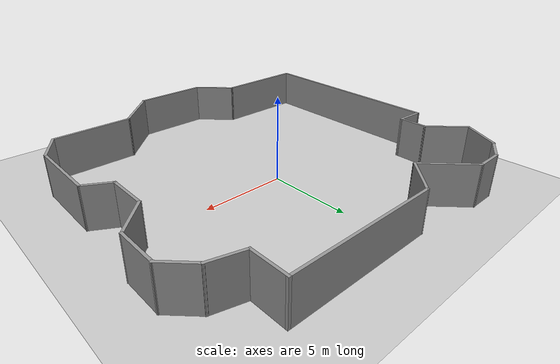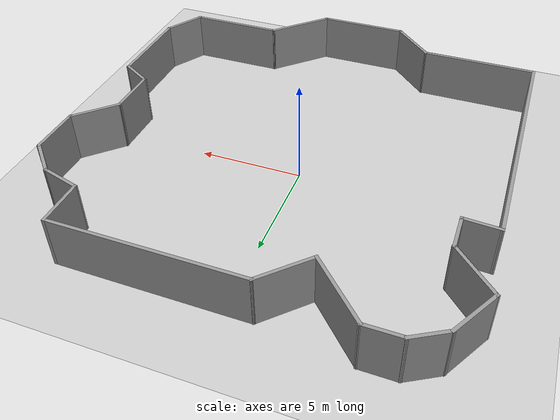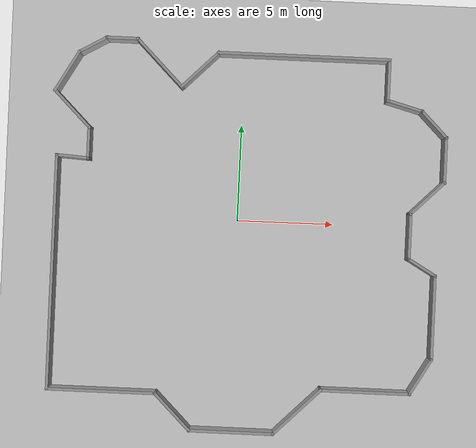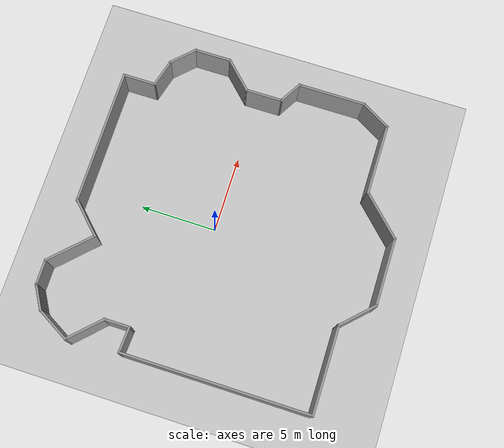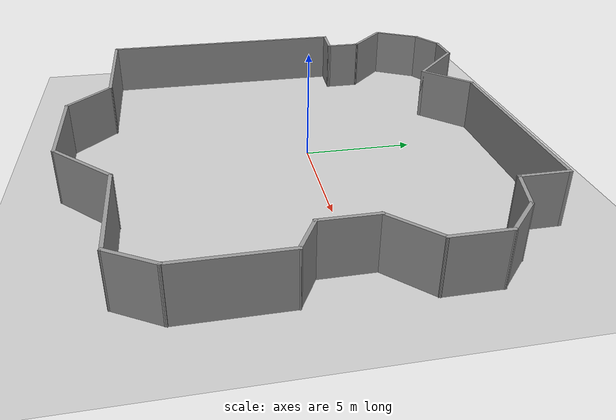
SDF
<sdf version="1.6">
 <world name="default">
  <light name="sun" type="directional">
   <pose>0 0 10 0 -0 0</pose>
   <diffuse>0.8 0.8 0.8 1</diffuse>
   <specular>0.1 0.1 0.1 1</specular>
   <attenuation>
    <range>1000</range>
    <constant>0.9</constant>
    <linear>0.01</linear>
    <quadratic>0.001</quadratic>
   </attenuation>
   <direction>-0.5 0.5 -1</direction>
  </light>
  <model name="ground_plane">
   <static>1</static>
   <link name="link">
    <collision name="collision">
     <geometry><plane><normal>0 0 1</normal><size>100 100</size></plane></geometry>
     <surface><friction><ode><mu>100</mu><mu2>50</mu2></ode></friction></surface>
    </collision>
    <visual name="visual">
     <cast_shadows>0</cast_shadows>
     <geometry><plane><normal>0 0 1</normal><size>100 100</size></plane></geometry>
     <material>
      <script><uri>file://media/materials/scripts/gazebo.material</uri><name>Gazebo/Grey</name></script>
     </material>
    </visual>
   </link>
  </model>
  <gravity>0 0 -9.8</gravity>
  <magnetic_field>6e-06 2.3e-05 -4.2e-05</magnetic_field>
  <atmosphere type="adiabatic"/>
  <physics name="default_physics" default="0" type="ode">
   <max_step_size>0.001</max_step_size>
   <real_time_factor>1</real_time_factor>
   <real_time_update_rate>1000</real_time_update_rate>
  </physics>
  <scene><ambient>0.4 0.4 0.4 1</ambient><background>0.7 0.7 0.7 1</background><shadows>1</shadows></scene>
  <spherical_coordinates>
   <surface_model>EARTH_WGS84</surface_model>
   <latitude_deg>0</latitude_deg>
   <longitude_deg>0</longitude_deg>
   <elevation>0</elevation>
   <heading_deg>0</heading_deg>
  </spherical_coordinates>
  <model name="lab2">
   <pose>0.45021 -0.897889 0 0 -0 0</pose>
   <link name="Wall_10">
    <collision name="Wall_10_Collision">
     <geometry><box><size>1.75 0.15 2.5</size></box></geometry>
     <pose>0 0 1.25 0 -0 0</pose>
    </collision>
    <visual name="Wall_10_Visual">
     <pose>0 0 1.25 0 -0 0</pose>
     <geometry><box><size>1.75 0.15 2.5</size></box></geometry>
     <material>
      <script><uri>file://media/materials/scripts/gazebo.material</uri><name>Gazebo/Grey</name></script>
      <ambient>1 1 1 1</ambient>
     </material>
     <meta><layer>0</layer></meta>
    </visual>
    <pose>9.18764 -1.12077 0 0 -0 2.61799</pose>
   </link>
   <link name="Wall_11">
    <collision name="Wall_11_Collision">
     <geometry><box><size>2.5 0.15 2.5</size></box></geometry>
     <pose>0 0 1.25 0 -0 0</pose>
    </collision>
    <visual name="Wall_11_Visual">
     <pose>0 0 1.25 0 -0 0</pose>
     <geometry><box><size>2.5 0.15 2.5</size></box></geometry>
     <material>
      <script><uri>file://media/materials/scripts/gazebo.material</uri><name>Gazebo/Grey</name></script>
      <ambient>1 1 1 1</ambient>
     </material>
     <meta><layer>0</layer></meta>
    </visual>
    <pose>8.49482 0.454234 0 0 -0 1.5708</pose>
   </link>
   <link name="Wall_12">
    <collision name="Wall_12_Collision">
     <geometry><box><size>2.5 0.15 2.5</size></box></geometry>
     <pose>0 0 1.25 0 -0 0</pose>
    </collision>
    <visual name="Wall_12_Visual">
     <pose>0 0 1.25 0 -0 0</pose>
     <geometry><box><size>2.5 0.15 2.5</size></box></geometry>
     <material>
      <script><uri>file://media/materials/scripts/gazebo.material</uri><name>Gazebo/Grey</name></script>
      <ambient>1 1 1 1</ambient>
     </material>
     <meta><layer>0</layer></meta>
    </visual>
    <pose>9.32567 2.46008 0 0 -0 0.785398</pose>
   </link>
   <link name="Wall_13">
    <collision name="Wall_13_Collision">
     <geometry><box><size>2.5 0.15 2.5</size></box></geometry>
     <pose>0 0 1.25 0 -0 0</pose>
    </collision>
    <visual name="Wall_13_Visual">
     <pose>0 0 1.25 0 -0 0</pose>
     <geometry><box><size>2.5 0.15 2.5</size></box></geometry>
     <material>
      <script><uri>file://media/materials/scripts/gazebo.material</uri><name>Gazebo/Grey</name></script>
      <ambient>1 1 1 1</ambient>
     </material>
     <meta><layer>0</layer></meta>
    </visual>
    <pose>10.1565 4.46593 0 0 -0 1.5708</pose>
   </link>
   <link name="Wall_14">
    <collision name="Wall_14_Collision">
     <geometry><box><size>2 0.15 2.5</size></box></geometry>
     <pose>0 0 1.25 0 -0 0</pose>
    </collision>
    <visual name="Wall_14_Visual">
     <pose>0 0 1.25 0 -0 0</pose>
     <geometry><box><size>2 0.15 2.5</size></box></geometry>
     <material>
      <script><uri>file://media/materials/scripts/gazebo.material</uri><name>Gazebo/Grey</name></script>
      <ambient>1 1 1 1</ambient>
     </material>
     <meta><layer>0</layer></meta>
    </visual>
    <pose>9.50244 6.29501 0 0 -0 2.35619</pose>
   </link>
   <link name="Wall_15">
    <collision name="Wall_15_Collision">
     <geometry><box><size>2 0.15 2.5</size></box></geometry>
     <pose>0 0 1.25 0 -0 0</pose>
    </collision>
    <visual name="Wall_15_Visual">
     <pose>0 0 1.25 0 -0 0</pose>
     <geometry><box><size>2 0.15 2.5</size></box></geometry>
     <material>
      <script><uri>file://media/materials/scripts/gazebo.material</uri><name>Gazebo/Grey</name></script>
      <ambient>1 1 1 1</ambient>
     </material>
     <meta><layer>0</layer></meta>
    </visual>
    <pose>7.95489 7.18849 0 0 -0 2.87979</pose>
   </link>
   <link name="Wall_16">
    <collision name="Wall_16_Collision">
     <geometry><box><size>2.25 0.15 2.5</size></box></geometry>
     <pose>0 0 1.25 0 -0 0</pose>
    </collision>
    <visual name="Wall_16_Visual">
     <pose>0 0 1.25 0 -0 0</pose>
     <geometry><box><size>2.25 0.15 2.5</size></box></geometry>
     <material>
      <script><uri>file://media/materials/scripts/gazebo.material</uri><name>Gazebo/Grey</name></script>
      <ambient>1 1 1 1</ambient>
     </material>
     <meta><layer>0</layer></meta>
    </visual>
    <pose>7.06141 8.4779 0 0 -0 1.5708</pose>
   </link>
   <link name="Wall_17">
    <collision name="Wall_17_Collision">
     <geometry><box><size>9 0.15 2.5</size></box></geometry>
     <pose>0 0 1.25 0 -0 0</pose>
    </collision>
    <visual name="Wall_17_Visual">
     <pose>0 0 1.25 0 -0 0</pose>
     <geometry><box><size>9 0.15 2.5</size></box></geometry>
     <material>
      <script><uri>file://media/materials/scripts/gazebo.material</uri><name>Gazebo/Grey</name></script>
      <ambient>1 1 1 1</ambient>
     </material>
     <meta><layer>0</layer></meta>
    </visual>
    <pose>2.63641 9.5279 0 0 -0 3.14159</pose>
   </link>
   <link name="Wall_18">
    <collision name="Wall_18_Collision">
     <geometry><box><size>2.75 0.15 2.5</size></box></geometry>
     <pose>0 0 1.25 0 -0 0</pose>
    </collision>
    <visual name="Wall_18_Visual">
     <pose>0 0 1.25 0 -0 0</pose>
     <geometry><box><size>2.75 0.15 2.5</size></box></geometry>
     <material>
      <script><uri>file://media/materials/scripts/gazebo.material</uri><name>Gazebo/Grey</name></script>
      <ambient>1 1 1 1</ambient>
     </material>
     <meta><layer>0</layer></meta>
    </visual>
    <pose>-2.70783 8.60866 0 0 0 -2.35619</pose>
   </link>
   <link name="Wall_19">
    <collision name="Wall_19_Collision">
     <geometry><box><size>3.5 0.15 2.5</size></box></geometry>
     <pose>0 0 1.25 0 -0 0</pose>
    </collision>
    <visual name="Wall_19_Visual">
     <pose>0 0 1.25 0 -0 0</pose>
     <geometry><box><size>3.5 0.15 2.5</size></box></geometry>
     <material>
      <script><uri>file://media/materials/scripts/gazebo.material</uri><name>Gazebo/Grey</name></script>
      <ambient>1 1 1 1</ambient>
     </material>
     <meta><layer>0</layer></meta>
    </visual>
    <pose>-4.81147 8.87382 0 0 -0 2.35619</pose>
   </link>
   <link name="Wall_2">
    <collision name="Wall_2_Collision">
     <geometry><box><size>12.25 0.15 2.5</size></box></geometry>
     <pose>0 0 1.25 0 -0 0</pose>
    </collision>
    <visual name="Wall_2_Visual">
     <pose>0 0 1.25 0 -0 0</pose>
     <geometry><box><size>12.25 0.15 2.5</size></box></geometry>
     <material>
      <script><uri>file://media/materials/scripts/gazebo.material</uri><name>Gazebo/Grey</name></script>
      <ambient>1 1 1 1</ambient>
     </material>
     <meta><layer>0</layer></meta>
    </visual>
    <pose>-9.92683 -2.16975 0 0 0 -1.5708</pose>
   </link>
   <link name="Wall_20">
    <collision name="Wall_20_Collision">
     <geometry><box><size>1.75 0.15 2.5</size></box></geometry>
     <pose>0 0 1.25 0 -0 0</pose>
    </collision>
    <visual name="Wall_20_Visual">
     <pose>0 0 1.25 0 -0 0</pose>
     <geometry><box><size>1.75 0.15 2.5</size></box></geometry>
     <material>
      <script><uri>file://media/materials/scripts/gazebo.material</uri><name>Gazebo/Grey</name></script>
      <ambient>1 1 1 1</ambient>
     </material>
     <meta><layer>0</layer></meta>
    </visual>
    <pose>-6.79588 10.0582 0 0 -0 3.14159</pose>
   </link>
   <link name="Wall_21">
    <collision name="Wall_21_Collision">
     <geometry><box><size>1.75 0.15 2.5</size></box></geometry>
     <pose>0 0 1.25 0 -0 0</pose>
    </collision>
    <visual name="Wall_21_Visual">
     <pose>0 0 1.25 0 -0 0</pose>
     <geometry><box><size>1.75 0.15 2.5</size></box></geometry>
     <material>
      <script><uri>file://media/materials/scripts/gazebo.material</uri><name>Gazebo/Grey</name></script>
      <ambient>1 1 1 1</ambient>
     </material>
     <meta><layer>0</layer></meta>
    </visual>
    <pose>-8.2887 9.65823 0 0 0 -2.61799</pose>
   </link>
   <link name="Wall_22">
    <collision name="Wall_22_Collision">
     <geometry><box><size>2.5 0.15 2.5</size></box></geometry>
     <pose>0 0 1.25 0 -0 0</pose>
    </collision>
    <visual name="Wall_22_Visual">
     <pose>0 0 1.25 0 -0 0</pose>
     <geometry><box><size>2.5 0.15 2.5</size></box></geometry>
     <material>
      <script><uri>file://media/materials/scripts/gazebo.material</uri><name>Gazebo/Grey</name></script>
      <ambient>1 1 1 1</ambient>
     </material>
     <meta><layer>0</layer></meta>
    </visual>
    <pose>-9.56902 8.24065 0 0 0 -2.0944</pose>
   </link>
   <link name="Wall_23">
    <collision name="Wall_23_Collision">
     <geometry><box><size>2.75 0.15 2.5</size></box></geometry>
     <pose>0 0 1.25 0 -0 0</pose>
    </collision>
    <visual name="Wall_23_Visual">
     <pose>0 0 1.25 0 -0 0</pose>
     <geometry><box><size>2.75 0.15 2.5</size></box></geometry>
     <material>
      <script><uri>file://media/materials/scripts/gazebo.material</uri><name>Gazebo/Grey</name></script>
      <ambient>1 1 1 1</ambient>
     </material>
     <meta><layer>0</layer></meta>
    </visual>
    <pose>-9.23728 6.30383 0 0 0 -0.785398</pose>
   </link>
   <link name="Wall_24">
    <collision name="Wall_24_Collision">
     <geometry><box><size>1.75 0.15 2.5</size></box></geometry>
     <pose>0 0 1.25 0 -0 0</pose>
    </collision>
    <visual name="Wall_24_Visual">
     <pose>0 0 1.25 0 -0 0</pose>
     <geometry><box><size>1.75 0.15 2.5</size></box></geometry>
     <material>
      <script><uri>file://media/materials/scripts/gazebo.material</uri><name>Gazebo/Grey</name></script>
      <ambient>1 1 1 1</ambient>
     </material>
     <meta><layer>0</layer></meta>
    </visual>
    <pose>-8.31804 4.58459 0 0 0 -1.5708</pose>
   </link>
   <link name="Wall_25">
    <collision name="Wall_25_Collision">
     <geometry><box><size>1.76163 0.15 2.5</size></box></geometry>
     <pose>0 0 1.25 0 -0 0</pose>
    </collision>
    <visual name="Wall_25_Visual">
     <pose>0 0 1.25 0 -0 0</pose>
     <geometry><box><size>1.76163 0.15 2.5</size></box></geometry>
     <material>
      <script><uri>file://media/materials/scripts/gazebo.material</uri><name>Gazebo/Grey</name></script>
      <ambient>1 1 1 1</ambient>
     </material>
     <meta><layer>0</layer></meta>
    </visual>
    <pose>-9.12243 3.83242 0 0 -0 3.0822</pose>
   </link>
   <link name="Wall_3">
    <collision name="Wall_3_Collision">
     <geometry><box><size>5.75 0.15 2.5</size></box></geometry>
     <pose>0 0 1.25 0 -0 0</pose>
    </collision>
    <visual name="Wall_3_Visual">
     <pose>0 0 1.25 0 -0 0</pose>
     <geometry><box><size>5.75 0.15 2.5</size></box></geometry>
     <material>
      <script><uri>file://media/materials/scripts/gazebo.material</uri><name>Gazebo/Grey</name></script>
      <ambient>1 1 1 1</ambient>
     </material>
     <meta><layer>0</layer></meta>
    </visual>
    <pose>-7.12683 -8.21975 0 0 -0 0</pose>
   </link>
   <link name="Wall_4">
    <collision name="Wall_4_Collision">
     <geometry><box><size>2.75 0.15 2.5</size></box></geometry>
     <pose>0 0 1.25 0 -0 0</pose>
    </collision>
    <visual name="Wall_4_Visual">
     <pose>0 0 1.25 0 -0 0</pose>
     <geometry><box><size>2.75 0.15 2.5</size></box></geometry>
     <material>
      <script><uri>file://media/materials/scripts/gazebo.material</uri><name>Gazebo/Grey</name></script>
      <ambient>1 1 1 1</ambient>
     </material>
     <meta><layer>0</layer></meta>
    </visual>
    <pose>-3.40759 -9.13899 0 0 0 -0.785398</pose>
   </link>
   <link name="Wall_5">
    <collision name="Wall_5_Collision">
     <geometry><box><size>4.5 0.15 2.5</size></box></geometry>
     <pose>0 0 1.25 0 -0 0</pose>
    </collision>
    <visual name="Wall_5_Visual">
     <pose>0 0 1.25 0 -0 0</pose>
     <geometry><box><size>4.5 0.15 2.5</size></box></geometry>
     <material>
      <script><uri>file://media/materials/scripts/gazebo.material</uri><name>Gazebo/Grey</name></script>
      <ambient>1 1 1 1</ambient>
     </material>
     <meta><layer>0</layer></meta>
    </visual>
    <pose>-0.31335 -10.0582 0 0 -0 0</pose>
   </link>
   <link name="Wall_6">
    <collision name="Wall_6_Collision">
     <geometry><box><size>3.5 0.15 2.5</size></box></geometry>
     <pose>0 0 1.25 0 -0 0</pose>
    </collision>
    <visual name="Wall_6_Visual">
     <pose>0 0 1.25 0 -0 0</pose>
     <geometry><box><size>3.5 0.15 2.5</size></box></geometry>
     <material>
      <script><uri>file://media/materials/scripts/gazebo.material</uri><name>Gazebo/Grey</name></script>
      <ambient>1 1 1 1</ambient>
     </material>
     <meta><layer>0</layer></meta>
    </visual>
    <pose>3.04605 -8.87382 0 0 -0 0.785398</pose>
   </link>
   <link name="Wall_7">
    <collision name="Wall_7_Collision">
     <geometry><box><size>4.75 0.15 2.5</size></box></geometry>
     <pose>0 0 1.25 0 -0 0</pose>
    </collision>
    <visual name="Wall_7_Visual">
     <pose>0 0 1.25 0 -0 0</pose>
     <geometry><box><size>4.75 0.15 2.5</size></box></geometry>
     <material>
      <script><uri>file://media/materials/scripts/gazebo.material</uri><name>Gazebo/Grey</name></script>
      <ambient>1 1 1 1</ambient>
     </material>
     <meta><layer>0</layer></meta>
    </visual>
    <pose>6.53046 -7.68942 0 0 -0 0</pose>
   </link>
   <link name="Wall_8">
    <collision name="Wall_8_Collision">
     <geometry><box><size>2.25 0.15 2.5</size></box></geometry>
     <pose>0 0 1.25 0 -0 0</pose>
    </collision>
    <visual name="Wall_8_Visual">
     <pose>0 0 1.25 0 -0 0</pose>
     <geometry><box><size>2.25 0.15 2.5</size></box></geometry>
     <material>
      <script><uri>file://media/materials/scripts/gazebo.material</uri><name>Gazebo/Grey</name></script>
      <ambient>1 1 1 1</ambient>
     </material>
     <meta><layer>0</layer></meta>
    </visual>
    <pose>9.35546 -6.78009 0 0 -0 1.0472</pose>
   </link>
   <link name="Wall_9">
    <collision name="Wall_9_Collision">
     <geometry><box><size>4.5 0.15 2.5</size></box></geometry>
     <pose>0 0 1.25 0 -0 0</pose>
    </collision>
    <visual name="Wall_9_Visual">
     <pose>0 0 1.25 0 -0 0</pose>
     <geometry><box><size>4.5 0.15 2.5</size></box></geometry>
     <material>
      <script><uri>file://media/materials/scripts/gazebo.material</uri><name>Gazebo/Grey</name></script>
      <ambient>1 1 1 1</ambient>
     </material>
     <meta><layer>0</layer></meta>
    </visual>
    <pose>9.88046 -3.69577 0 0 -0 1.5708</pose>
   </link>
   <static>1</static>
  </model>
 </world>
</sdf>
